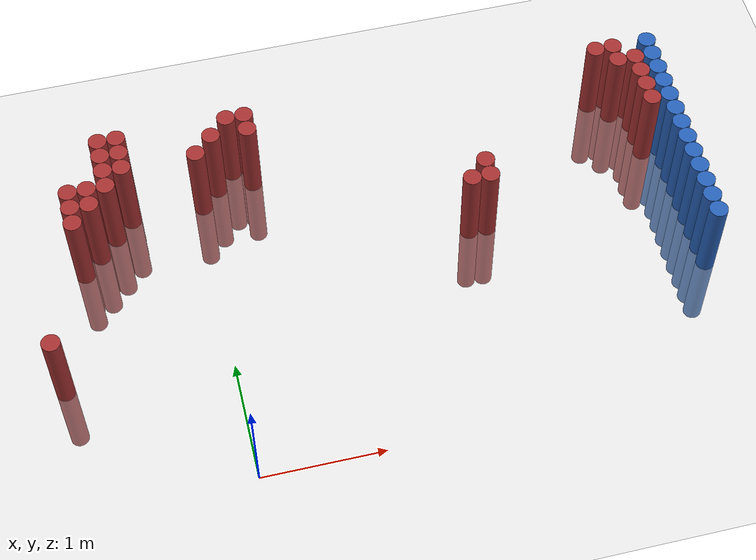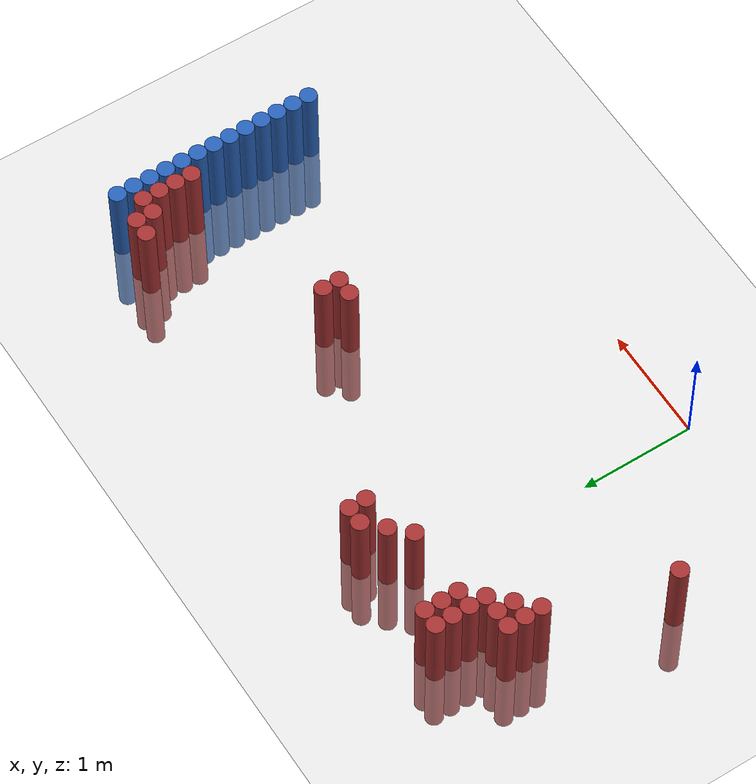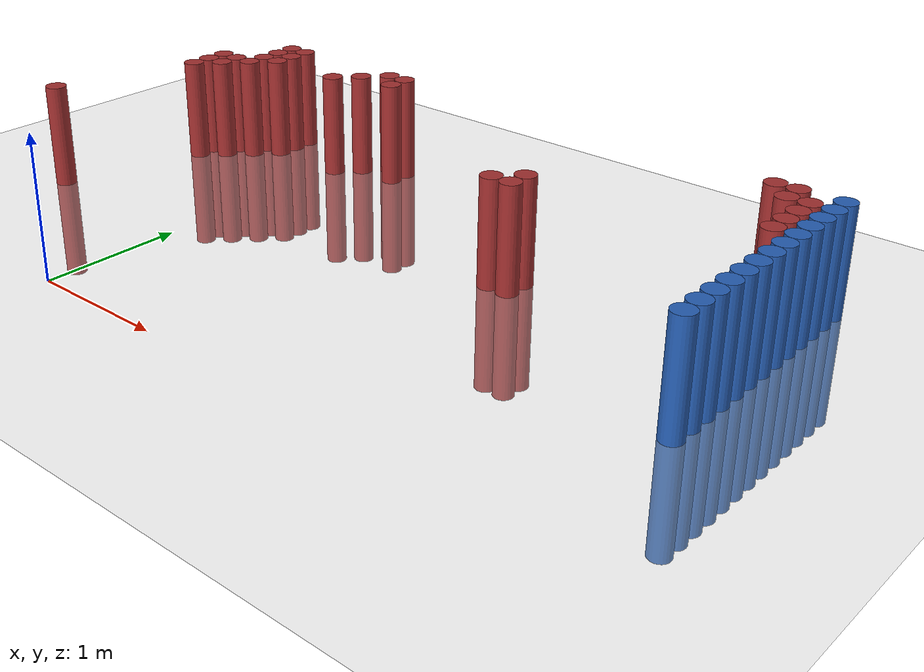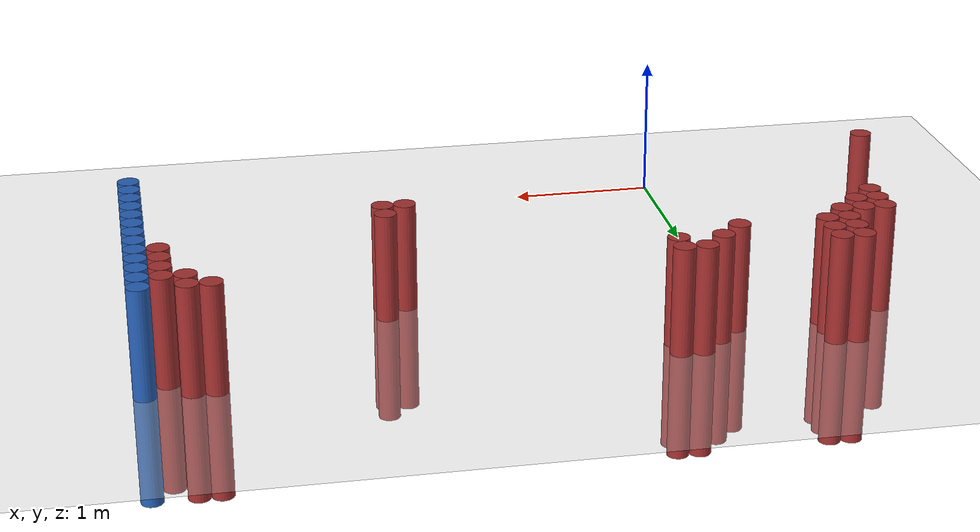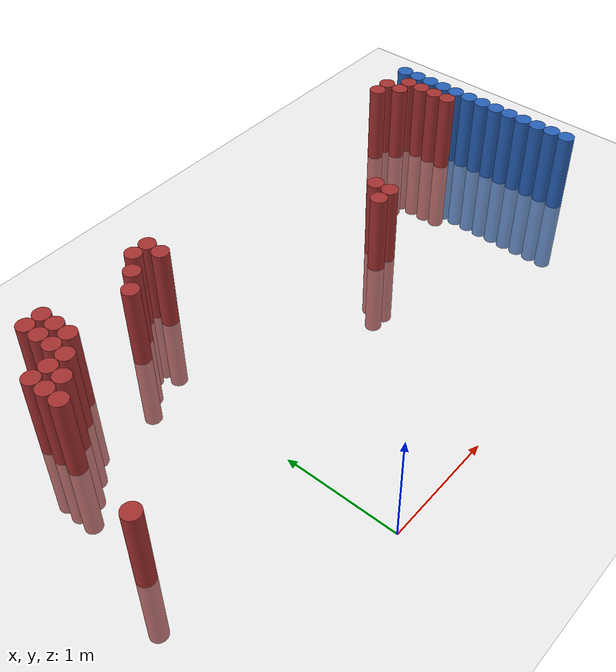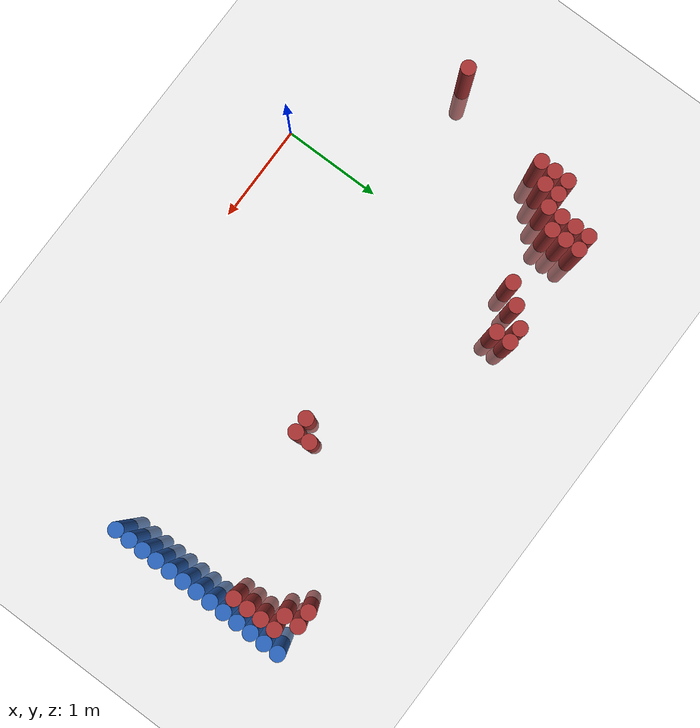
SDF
<sdf version="1.6">
 <world name="default">
  <model name="ground_plane">
   <static>1</static>
   <link name="link">
    <collision name="collision">
     <geometry><plane><normal>0 0 1</normal><size>100 100</size></plane></geometry>
     <surface><friction><ode><mu>100</mu><mu2>50</mu2></ode></friction></surface>
    </collision>
    <visual name="visual">
     <cast_shadows>0</cast_shadows>
     <geometry><plane><normal>0 0 1</normal><size>100 100</size></plane></geometry>
     <material>
      <script><uri>file://media/materials/scripts/gazebo.material</uri><name>Gazebo/Grey</name></script>
     </material>
    </visual>
   </link>
  </model>
  <model name="unit_cylinder_130">
   <static>1</static>
   <pose>3.925000 1.225000 0.000000 0.000000 0.000000 0.000000</pose>
   <link name="link">
    <inertial>
     <mass>1</mass>
     <inertia><ixx>0.145833</ixx><ixy>0</ixy><ixz>0</ixz><iyy>0.145833</iyy><iyz>0</iyz><izz>0.125</izz></inertia>
    </inertial>
    <collision name="collision">
     <geometry><cylinder><radius>0.075000</radius><length>1.5</length></cylinder></geometry>
    </collision>
    <visual name="visual">
     <geometry><cylinder><radius>0.075000</radius><length>1.5</length></cylinder></geometry>
     <material>
      <ambient>0.152000 0.379000 0.720000 1</ambient>
      <diffuse>0.152000 0.379000 0.720000 1</diffuse>
     </material>
     <material>
      <script><name>Gazebo/Grey</name><uri>file://media/materials/scripts/gazebo.material</uri></script>
     </material>
    </visual>
   </link>
  </model>
  <model name="unit_cylinder_132">
   <static>1</static>
   <pose>3.925000 1.375000 0.000000 0.000000 0.000000 0.000000</pose>
   <link name="link">
    <inertial>
     <mass>1</mass>
     <inertia><ixx>0.145833</ixx><ixy>0</ixy><ixz>0</ixz><iyy>0.145833</iyy><iyz>0</iyz><izz>0.125</izz></inertia>
    </inertial>
    <collision name="collision">
     <geometry><cylinder><radius>0.075000</radius><length>1.5</length></cylinder></geometry>
    </collision>
    <visual name="visual">
     <geometry><cylinder><radius>0.075000</radius><length>1.5</length></cylinder></geometry>
     <material>
      <ambient>0.152000 0.379000 0.720000 1</ambient>
      <diffuse>0.152000 0.379000 0.720000 1</diffuse>
     </material>
     <material>
      <script><name>Gazebo/Grey</name><uri>file://media/materials/scripts/gazebo.material</uri></script>
     </material>
    </visual>
   </link>
  </model>
  <model name="unit_cylinder_134">
   <static>1</static>
   <pose>3.925000 1.525000 0.000000 0.000000 0.000000 0.000000</pose>
   <link name="link">
    <inertial>
     <mass>1</mass>
     <inertia><ixx>0.145833</ixx><ixy>0</ixy><ixz>0</ixz><iyy>0.145833</iyy><iyz>0</iyz><izz>0.125</izz></inertia>
    </inertial>
    <collision name="collision">
     <geometry><cylinder><radius>0.075000</radius><length>1.5</length></cylinder></geometry>
    </collision>
    <visual name="visual">
     <geometry><cylinder><radius>0.075000</radius><length>1.5</length></cylinder></geometry>
     <material>
      <ambient>0.152000 0.379000 0.720000 1</ambient>
      <diffuse>0.152000 0.379000 0.720000 1</diffuse>
     </material>
     <material>
      <script><name>Gazebo/Grey</name><uri>file://media/materials/scripts/gazebo.material</uri></script>
     </material>
    </visual>
   </link>
  </model>
  <model name="unit_cylinder_136">
   <static>1</static>
   <pose>3.925000 1.675000 0.000000 0.000000 0.000000 0.000000</pose>
   <link name="link">
    <inertial>
     <mass>1</mass>
     <inertia><ixx>0.145833</ixx><ixy>0</ixy><ixz>0</ixz><iyy>0.145833</iyy><iyz>0</iyz><izz>0.125</izz></inertia>
    </inertial>
    <collision name="collision">
     <geometry><cylinder><radius>0.075000</radius><length>1.5</length></cylinder></geometry>
    </collision>
    <visual name="visual">
     <geometry><cylinder><radius>0.075000</radius><length>1.5</length></cylinder></geometry>
     <material>
      <ambient>0.152000 0.379000 0.720000 1</ambient>
      <diffuse>0.152000 0.379000 0.720000 1</diffuse>
     </material>
     <material>
      <script><name>Gazebo/Grey</name><uri>file://media/materials/scripts/gazebo.material</uri></script>
     </material>
    </visual>
   </link>
  </model>
  <model name="unit_cylinder_138">
   <static>1</static>
   <pose>3.925000 1.825000 0.000000 0.000000 0.000000 0.000000</pose>
   <link name="link">
    <inertial>
     <mass>1</mass>
     <inertia><ixx>0.145833</ixx><ixy>0</ixy><ixz>0</ixz><iyy>0.145833</iyy><iyz>0</iyz><izz>0.125</izz></inertia>
    </inertial>
    <collision name="collision">
     <geometry><cylinder><radius>0.075000</radius><length>1.5</length></cylinder></geometry>
    </collision>
    <visual name="visual">
     <geometry><cylinder><radius>0.075000</radius><length>1.5</length></cylinder></geometry>
     <material>
      <ambient>0.152000 0.379000 0.720000 1</ambient>
      <diffuse>0.152000 0.379000 0.720000 1</diffuse>
     </material>
     <material>
      <script><name>Gazebo/Grey</name><uri>file://media/materials/scripts/gazebo.material</uri></script>
     </material>
    </visual>
   </link>
  </model>
  <model name="unit_cylinder_140">
   <static>1</static>
   <pose>3.925000 1.975000 0.000000 0.000000 0.000000 0.000000</pose>
   <link name="link">
    <inertial>
     <mass>1</mass>
     <inertia><ixx>0.145833</ixx><ixy>0</ixy><ixz>0</ixz><iyy>0.145833</iyy><iyz>0</iyz><izz>0.125</izz></inertia>
    </inertial>
    <collision name="collision">
     <geometry><cylinder><radius>0.075000</radius><length>1.5</length></cylinder></geometry>
    </collision>
    <visual name="visual">
     <geometry><cylinder><radius>0.075000</radius><length>1.5</length></cylinder></geometry>
     <material>
      <ambient>0.152000 0.379000 0.720000 1</ambient>
      <diffuse>0.152000 0.379000 0.720000 1</diffuse>
     </material>
     <material>
      <script><name>Gazebo/Grey</name><uri>file://media/materials/scripts/gazebo.material</uri></script>
     </material>
    </visual>
   </link>
  </model>
  <model name="unit_cylinder_142">
   <static>1</static>
   <pose>3.925000 2.125000 0.000000 0.000000 0.000000 0.000000</pose>
   <link name="link">
    <inertial>
     <mass>1</mass>
     <inertia><ixx>0.145833</ixx><ixy>0</ixy><ixz>0</ixz><iyy>0.145833</iyy><iyz>0</iyz><izz>0.125</izz></inertia>
    </inertial>
    <collision name="collision">
     <geometry><cylinder><radius>0.075000</radius><length>1.5</length></cylinder></geometry>
    </collision>
    <visual name="visual">
     <geometry><cylinder><radius>0.075000</radius><length>1.5</length></cylinder></geometry>
     <material>
      <ambient>0.152000 0.379000 0.720000 1</ambient>
      <diffuse>0.152000 0.379000 0.720000 1</diffuse>
     </material>
     <material>
      <script><name>Gazebo/Grey</name><uri>file://media/materials/scripts/gazebo.material</uri></script>
     </material>
    </visual>
   </link>
  </model>
  <model name="unit_cylinder_144">
   <static>1</static>
   <pose>3.925000 2.275000 0.000000 0.000000 0.000000 0.000000</pose>
   <link name="link">
    <inertial>
     <mass>1</mass>
     <inertia><ixx>0.145833</ixx><ixy>0</ixy><ixz>0</ixz><iyy>0.145833</iyy><iyz>0</iyz><izz>0.125</izz></inertia>
    </inertial>
    <collision name="collision">
     <geometry><cylinder><radius>0.075000</radius><length>1.5</length></cylinder></geometry>
    </collision>
    <visual name="visual">
     <geometry><cylinder><radius>0.075000</radius><length>1.5</length></cylinder></geometry>
     <material>
      <ambient>0.152000 0.379000 0.720000 1</ambient>
      <diffuse>0.152000 0.379000 0.720000 1</diffuse>
     </material>
     <material>
      <script><name>Gazebo/Grey</name><uri>file://media/materials/scripts/gazebo.material</uri></script>
     </material>
    </visual>
   </link>
  </model>
  <model name="unit_cylinder_146">
   <static>1</static>
   <pose>3.925000 2.425000 0.000000 0.000000 0.000000 0.000000</pose>
   <link name="link">
    <inertial>
     <mass>1</mass>
     <inertia><ixx>0.145833</ixx><ixy>0</ixy><ixz>0</ixz><iyy>0.145833</iyy><iyz>0</iyz><izz>0.125</izz></inertia>
    </inertial>
    <collision name="collision">
     <geometry><cylinder><radius>0.075000</radius><length>1.5</length></cylinder></geometry>
    </collision>
    <visual name="visual">
     <geometry><cylinder><radius>0.075000</radius><length>1.5</length></cylinder></geometry>
     <material>
      <ambient>0.152000 0.379000 0.720000 1</ambient>
      <diffuse>0.152000 0.379000 0.720000 1</diffuse>
     </material>
     <material>
      <script><name>Gazebo/Grey</name><uri>file://media/materials/scripts/gazebo.material</uri></script>
     </material>
    </visual>
   </link>
  </model>
  <model name="unit_cylinder_148">
   <static>1</static>
   <pose>3.925000 2.575000 0.000000 0.000000 0.000000 0.000000</pose>
   <link name="link">
    <inertial>
     <mass>1</mass>
     <inertia><ixx>0.145833</ixx><ixy>0</ixy><ixz>0</ixz><iyy>0.145833</iyy><iyz>0</iyz><izz>0.125</izz></inertia>
    </inertial>
    <collision name="collision">
     <geometry><cylinder><radius>0.075000</radius><length>1.5</length></cylinder></geometry>
    </collision>
    <visual name="visual">
     <geometry><cylinder><radius>0.075000</radius><length>1.5</length></cylinder></geometry>
     <material>
      <ambient>0.152000 0.379000 0.720000 1</ambient>
      <diffuse>0.152000 0.379000 0.720000 1</diffuse>
     </material>
     <material>
      <script><name>Gazebo/Grey</name><uri>file://media/materials/scripts/gazebo.material</uri></script>
     </material>
    </visual>
   </link>
  </model>
  <model name="unit_cylinder_150">
   <static>1</static>
   <pose>3.925000 2.725000 0.000000 0.000000 0.000000 0.000000</pose>
   <link name="link">
    <inertial>
     <mass>1</mass>
     <inertia><ixx>0.145833</ixx><ixy>0</ixy><ixz>0</ixz><iyy>0.145833</iyy><iyz>0</iyz><izz>0.125</izz></inertia>
    </inertial>
    <collision name="collision">
     <geometry><cylinder><radius>0.075000</radius><length>1.5</length></cylinder></geometry>
    </collision>
    <visual name="visual">
     <geometry><cylinder><radius>0.075000</radius><length>1.5</length></cylinder></geometry>
     <material>
      <ambient>0.152000 0.379000 0.720000 1</ambient>
      <diffuse>0.152000 0.379000 0.720000 1</diffuse>
     </material>
     <material>
      <script><name>Gazebo/Grey</name><uri>file://media/materials/scripts/gazebo.material</uri></script>
     </material>
    </visual>
   </link>
  </model>
  <model name="unit_cylinder_152">
   <static>1</static>
   <pose>3.925000 2.875000 0.000000 0.000000 0.000000 0.000000</pose>
   <link name="link">
    <inertial>
     <mass>1</mass>
     <inertia><ixx>0.145833</ixx><ixy>0</ixy><ixz>0</ixz><iyy>0.145833</iyy><iyz>0</iyz><izz>0.125</izz></inertia>
    </inertial>
    <collision name="collision">
     <geometry><cylinder><radius>0.075000</radius><length>1.5</length></cylinder></geometry>
    </collision>
    <visual name="visual">
     <geometry><cylinder><radius>0.075000</radius><length>1.5</length></cylinder></geometry>
     <material>
      <ambient>0.152000 0.379000 0.720000 1</ambient>
      <diffuse>0.152000 0.379000 0.720000 1</diffuse>
     </material>
     <material>
      <script><name>Gazebo/Grey</name><uri>file://media/materials/scripts/gazebo.material</uri></script>
     </material>
    </visual>
   </link>
  </model>
  <model name="unit_cylinder_340">
   <static>1</static>
   <pose>-1.325000 1.075000 0.000000 0.000000 0.000000 0.000000</pose>
   <link name="link">
    <inertial>
     <mass>1</mass>
     <inertia><ixx>0.145833</ixx><ixy>0</ixy><ixz>0</ixz><iyy>0.145833</iyy><iyz>0</iyz><izz>0.125</izz></inertia>
    </inertial>
    <collision name="collision">
     <geometry><cylinder><radius>0.075000</radius><length>1.5</length></cylinder></geometry>
    </collision>
    <visual name="visual">
     <geometry><cylinder><radius>0.075000</radius><length>1.5</length></cylinder></geometry>
     <material>
      <ambient>0.648000 0.192000 0.192000 1</ambient>
      <diffuse>0.648000 0.192000 0.192000 1</diffuse>
     </material>
     <material>
      <script><name>Gazebo/Grey</name><uri>file://media/materials/scripts/gazebo.material</uri></script>
     </material>
    </visual>
   </link>
  </model>
  <model name="unit_cylinder_345">
   <static>1</static>
   <pose>-1.025000 2.125000 0.000000 0.000000 0.000000 0.000000</pose>
   <link name="link">
    <inertial>
     <mass>1</mass>
     <inertia><ixx>0.145833</ixx><ixy>0</ixy><ixz>0</ixz><iyy>0.145833</iyy><iyz>0</iyz><izz>0.125</izz></inertia>
    </inertial>
    <collision name="collision">
     <geometry><cylinder><radius>0.075000</radius><length>1.5</length></cylinder></geometry>
    </collision>
    <visual name="visual">
     <geometry><cylinder><radius>0.075000</radius><length>1.5</length></cylinder></geometry>
     <material>
      <ambient>0.648000 0.192000 0.192000 1</ambient>
      <diffuse>0.648000 0.192000 0.192000 1</diffuse>
     </material>
     <material>
      <script><name>Gazebo/Grey</name><uri>file://media/materials/scripts/gazebo.material</uri></script>
     </material>
    </visual>
   </link>
  </model>
  <model name="unit_cylinder_346">
   <static>1</static>
   <pose>-1.025000 2.275000 0.000000 0.000000 0.000000 0.000000</pose>
   <link name="link">
    <inertial>
     <mass>1</mass>
     <inertia><ixx>0.145833</ixx><ixy>0</ixy><ixz>0</ixz><iyy>0.145833</iyy><iyz>0</iyz><izz>0.125</izz></inertia>
    </inertial>
    <collision name="collision">
     <geometry><cylinder><radius>0.075000</radius><length>1.5</length></cylinder></geometry>
    </collision>
    <visual name="visual">
     <geometry><cylinder><radius>0.075000</radius><length>1.5</length></cylinder></geometry>
     <material>
      <ambient>0.648000 0.192000 0.192000 1</ambient>
      <diffuse>0.648000 0.192000 0.192000 1</diffuse>
     </material>
     <material>
      <script><name>Gazebo/Grey</name><uri>file://media/materials/scripts/gazebo.material</uri></script>
     </material>
    </visual>
   </link>
  </model>
  <model name="unit_cylinder_347">
   <static>1</static>
   <pose>-1.025000 2.425000 0.000000 0.000000 0.000000 0.000000</pose>
   <link name="link">
    <inertial>
     <mass>1</mass>
     <inertia><ixx>0.145833</ixx><ixy>0</ixy><ixz>0</ixz><iyy>0.145833</iyy><iyz>0</iyz><izz>0.125</izz></inertia>
    </inertial>
    <collision name="collision">
     <geometry><cylinder><radius>0.075000</radius><length>1.5</length></cylinder></geometry>
    </collision>
    <visual name="visual">
     <geometry><cylinder><radius>0.075000</radius><length>1.5</length></cylinder></geometry>
     <material>
      <ambient>0.648000 0.192000 0.192000 1</ambient>
      <diffuse>0.648000 0.192000 0.192000 1</diffuse>
     </material>
     <material>
      <script><name>Gazebo/Grey</name><uri>file://media/materials/scripts/gazebo.material</uri></script>
     </material>
    </visual>
   </link>
  </model>
  <model name="unit_cylinder_352">
   <static>1</static>
   <pose>-0.875000 2.275000 0.000000 0.000000 0.000000 0.000000</pose>
   <link name="link">
    <inertial>
     <mass>1</mass>
     <inertia><ixx>0.145833</ixx><ixy>0</ixy><ixz>0</ixz><iyy>0.145833</iyy><iyz>0</iyz><izz>0.125</izz></inertia>
    </inertial>
    <collision name="collision">
     <geometry><cylinder><radius>0.075000</radius><length>1.5</length></cylinder></geometry>
    </collision>
    <visual name="visual">
     <geometry><cylinder><radius>0.075000</radius><length>1.5</length></cylinder></geometry>
     <material>
      <ambient>0.648000 0.192000 0.192000 1</ambient>
      <diffuse>0.648000 0.192000 0.192000 1</diffuse>
     </material>
     <material>
      <script><name>Gazebo/Grey</name><uri>file://media/materials/scripts/gazebo.material</uri></script>
     </material>
    </visual>
   </link>
  </model>
  <model name="unit_cylinder_353">
   <static>1</static>
   <pose>-0.875000 2.425000 0.000000 0.000000 0.000000 0.000000</pose>
   <link name="link">
    <inertial>
     <mass>1</mass>
     <inertia><ixx>0.145833</ixx><ixy>0</ixy><ixz>0</ixz><iyy>0.145833</iyy><iyz>0</iyz><izz>0.125</izz></inertia>
    </inertial>
    <collision name="collision">
     <geometry><cylinder><radius>0.075000</radius><length>1.5</length></cylinder></geometry>
    </collision>
    <visual name="visual">
     <geometry><cylinder><radius>0.075000</radius><length>1.5</length></cylinder></geometry>
     <material>
      <ambient>0.648000 0.192000 0.192000 1</ambient>
      <diffuse>0.648000 0.192000 0.192000 1</diffuse>
     </material>
     <material>
      <script><name>Gazebo/Grey</name><uri>file://media/materials/scripts/gazebo.material</uri></script>
     </material>
    </visual>
   </link>
  </model>
  <model name="unit_cylinder_357">
   <static>1</static>
   <pose>-0.725000 2.425000 0.000000 0.000000 0.000000 0.000000</pose>
   <link name="link">
    <inertial>
     <mass>1</mass>
     <inertia><ixx>0.145833</ixx><ixy>0</ixy><ixz>0</ixz><iyy>0.145833</iyy><iyz>0</iyz><izz>0.125</izz></inertia>
    </inertial>
    <collision name="collision">
     <geometry><cylinder><radius>0.075000</radius><length>1.5</length></cylinder></geometry>
    </collision>
    <visual name="visual">
     <geometry><cylinder><radius>0.075000</radius><length>1.5</length></cylinder></geometry>
     <material>
      <ambient>0.648000 0.192000 0.192000 1</ambient>
      <diffuse>0.648000 0.192000 0.192000 1</diffuse>
     </material>
     <material>
      <script><name>Gazebo/Grey</name><uri>file://media/materials/scripts/gazebo.material</uri></script>
     </material>
    </visual>
   </link>
  </model>
  <model name="unit_cylinder_358">
   <static>1</static>
   <pose>-0.725000 2.575000 0.000000 0.000000 0.000000 0.000000</pose>
   <link name="link">
    <inertial>
     <mass>1</mass>
     <inertia><ixx>0.145833</ixx><ixy>0</ixy><ixz>0</ixz><iyy>0.145833</iyy><iyz>0</iyz><izz>0.125</izz></inertia>
    </inertial>
    <collision name="collision">
     <geometry><cylinder><radius>0.075000</radius><length>1.5</length></cylinder></geometry>
    </collision>
    <visual name="visual">
     <geometry><cylinder><radius>0.075000</radius><length>1.5</length></cylinder></geometry>
     <material>
      <ambient>0.648000 0.192000 0.192000 1</ambient>
      <diffuse>0.648000 0.192000 0.192000 1</diffuse>
     </material>
     <material>
      <script><name>Gazebo/Grey</name><uri>file://media/materials/scripts/gazebo.material</uri></script>
     </material>
    </visual>
   </link>
  </model>
  <model name="unit_cylinder_359">
   <static>1</static>
   <pose>-0.725000 2.725000 0.000000 0.000000 0.000000 0.000000</pose>
   <link name="link">
    <inertial>
     <mass>1</mass>
     <inertia><ixx>0.145833</ixx><ixy>0</ixy><ixz>0</ixz><iyy>0.145833</iyy><iyz>0</iyz><izz>0.125</izz></inertia>
    </inertial>
    <collision name="collision">
     <geometry><cylinder><radius>0.075000</radius><length>1.5</length></cylinder></geometry>
    </collision>
    <visual name="visual">
     <geometry><cylinder><radius>0.075000</radius><length>1.5</length></cylinder></geometry>
     <material>
      <ambient>0.648000 0.192000 0.192000 1</ambient>
      <diffuse>0.648000 0.192000 0.192000 1</diffuse>
     </material>
     <material>
      <script><name>Gazebo/Grey</name><uri>file://media/materials/scripts/gazebo.material</uri></script>
     </material>
    </visual>
   </link>
  </model>
  <model name="unit_cylinder_360">
   <static>1</static>
   <pose>-0.725000 2.875000 0.000000 0.000000 0.000000 0.000000</pose>
   <link name="link">
    <inertial>
     <mass>1</mass>
     <inertia><ixx>0.145833</ixx><ixy>0</ixy><ixz>0</ixz><iyy>0.145833</iyy><iyz>0</iyz><izz>0.125</izz></inertia>
    </inertial>
    <collision name="collision">
     <geometry><cylinder><radius>0.075000</radius><length>1.5</length></cylinder></geometry>
    </collision>
    <visual name="visual">
     <geometry><cylinder><radius>0.075000</radius><length>1.5</length></cylinder></geometry>
     <material>
      <ambient>0.648000 0.192000 0.192000 1</ambient>
      <diffuse>0.648000 0.192000 0.192000 1</diffuse>
     </material>
     <material>
      <script><name>Gazebo/Grey</name><uri>file://media/materials/scripts/gazebo.material</uri></script>
     </material>
    </visual>
   </link>
  </model>
  <model name="unit_cylinder_367">
   <static>1</static>
   <pose>-0.575000 2.575000 0.000000 0.000000 0.000000 0.000000</pose>
   <link name="link">
    <inertial>
     <mass>1</mass>
     <inertia><ixx>0.145833</ixx><ixy>0</ixy><ixz>0</ixz><iyy>0.145833</iyy><iyz>0</iyz><izz>0.125</izz></inertia>
    </inertial>
    <collision name="collision">
     <geometry><cylinder><radius>0.075000</radius><length>1.5</length></cylinder></geometry>
    </collision>
    <visual name="visual">
     <geometry><cylinder><radius>0.075000</radius><length>1.5</length></cylinder></geometry>
     <material>
      <ambient>0.648000 0.192000 0.192000 1</ambient>
      <diffuse>0.648000 0.192000 0.192000 1</diffuse>
     </material>
     <material>
      <script><name>Gazebo/Grey</name><uri>file://media/materials/scripts/gazebo.material</uri></script>
     </material>
    </visual>
   </link>
  </model>
  <model name="unit_cylinder_368">
   <static>1</static>
   <pose>-0.575000 2.725000 0.000000 0.000000 0.000000 0.000000</pose>
   <link name="link">
    <inertial>
     <mass>1</mass>
     <inertia><ixx>0.145833</ixx><ixy>0</ixy><ixz>0</ixz><iyy>0.145833</iyy><iyz>0</iyz><izz>0.125</izz></inertia>
    </inertial>
    <collision name="collision">
     <geometry><cylinder><radius>0.075000</radius><length>1.5</length></cylinder></geometry>
    </collision>
    <visual name="visual">
     <geometry><cylinder><radius>0.075000</radius><length>1.5</length></cylinder></geometry>
     <material>
      <ambient>0.648000 0.192000 0.192000 1</ambient>
      <diffuse>0.648000 0.192000 0.192000 1</diffuse>
     </material>
     <material>
      <script><name>Gazebo/Grey</name><uri>file://media/materials/scripts/gazebo.material</uri></script>
     </material>
    </visual>
   </link>
  </model>
  <model name="unit_cylinder_369">
   <static>1</static>
   <pose>-0.575000 2.875000 0.000000 0.000000 0.000000 0.000000</pose>
   <link name="link">
    <inertial>
     <mass>1</mass>
     <inertia><ixx>0.145833</ixx><ixy>0</ixy><ixz>0</ixz><iyy>0.145833</iyy><iyz>0</iyz><izz>0.125</izz></inertia>
    </inertial>
    <collision name="collision">
     <geometry><cylinder><radius>0.075000</radius><length>1.5</length></cylinder></geometry>
    </collision>
    <visual name="visual">
     <geometry><cylinder><radius>0.075000</radius><length>1.5</length></cylinder></geometry>
     <material>
      <ambient>0.648000 0.192000 0.192000 1</ambient>
      <diffuse>0.648000 0.192000 0.192000 1</diffuse>
     </material>
     <material>
      <script><name>Gazebo/Grey</name><uri>file://media/materials/scripts/gazebo.material</uri></script>
     </material>
    </visual>
   </link>
  </model>
  <model name="unit_cylinder_376">
   <static>1</static>
   <pose>0.025000 2.575000 0.000000 0.000000 0.000000 0.000000</pose>
   <link name="link">
    <inertial>
     <mass>1</mass>
     <inertia><ixx>0.145833</ixx><ixy>0</ixy><ixz>0</ixz><iyy>0.145833</iyy><iyz>0</iyz><izz>0.125</izz></inertia>
    </inertial>
    <collision name="collision">
     <geometry><cylinder><radius>0.075000</radius><length>1.5</length></cylinder></geometry>
    </collision>
    <visual name="visual">
     <geometry><cylinder><radius>0.075000</radius><length>1.5</length></cylinder></geometry>
     <material>
      <ambient>0.648000 0.192000 0.192000 1</ambient>
      <diffuse>0.648000 0.192000 0.192000 1</diffuse>
     </material>
     <material>
      <script><name>Gazebo/Grey</name><uri>file://media/materials/scripts/gazebo.material</uri></script>
     </material>
    </visual>
   </link>
  </model>
  <model name="unit_cylinder_379">
   <static>1</static>
   <pose>0.175000 2.725000 0.000000 0.000000 0.000000 0.000000</pose>
   <link name="link">
    <inertial>
     <mass>1</mass>
     <inertia><ixx>0.145833</ixx><ixy>0</ixy><ixz>0</ixz><iyy>0.145833</iyy><iyz>0</iyz><izz>0.125</izz></inertia>
    </inertial>
    <collision name="collision">
     <geometry><cylinder><radius>0.075000</radius><length>1.5</length></cylinder></geometry>
    </collision>
    <visual name="visual">
     <geometry><cylinder><radius>0.075000</radius><length>1.5</length></cylinder></geometry>
     <material>
      <ambient>0.648000 0.192000 0.192000 1</ambient>
      <diffuse>0.648000 0.192000 0.192000 1</diffuse>
     </material>
     <material>
      <script><name>Gazebo/Grey</name><uri>file://media/materials/scripts/gazebo.material</uri></script>
     </material>
    </visual>
   </link>
  </model>
  <model name="unit_cylinder_381">
   <static>1</static>
   <pose>0.325000 2.875000 0.000000 0.000000 0.000000 0.000000</pose>
   <link name="link">
    <inertial>
     <mass>1</mass>
     <inertia><ixx>0.145833</ixx><ixy>0</ixy><ixz>0</ixz><iyy>0.145833</iyy><iyz>0</iyz><izz>0.125</izz></inertia>
    </inertial>
    <collision name="collision">
     <geometry><cylinder><radius>0.075000</radius><length>1.5</length></cylinder></geometry>
    </collision>
    <visual name="visual">
     <geometry><cylinder><radius>0.075000</radius><length>1.5</length></cylinder></geometry>
     <material>
      <ambient>0.648000 0.192000 0.192000 1</ambient>
      <diffuse>0.648000 0.192000 0.192000 1</diffuse>
     </material>
     <material>
      <script><name>Gazebo/Grey</name><uri>file://media/materials/scripts/gazebo.material</uri></script>
     </material>
    </visual>
   </link>
  </model>
  <model name="unit_cylinder_383">
   <static>1</static>
   <pose>0.475000 2.725000 0.000000 0.000000 0.000000 0.000000</pose>
   <link name="link">
    <inertial>
     <mass>1</mass>
     <inertia><ixx>0.145833</ixx><ixy>0</ixy><ixz>0</ixz><iyy>0.145833</iyy><iyz>0</iyz><izz>0.125</izz></inertia>
    </inertial>
    <collision name="collision">
     <geometry><cylinder><radius>0.075000</radius><length>1.5</length></cylinder></geometry>
    </collision>
    <visual name="visual">
     <geometry><cylinder><radius>0.075000</radius><length>1.5</length></cylinder></geometry>
     <material>
      <ambient>0.648000 0.192000 0.192000 1</ambient>
      <diffuse>0.648000 0.192000 0.192000 1</diffuse>
     </material>
     <material>
      <script><name>Gazebo/Grey</name><uri>file://media/materials/scripts/gazebo.material</uri></script>
     </material>
    </visual>
   </link>
  </model>
  <model name="unit_cylinder_384">
   <static>1</static>
   <pose>0.475000 2.875000 0.000000 0.000000 0.000000 0.000000</pose>
   <link name="link">
    <inertial>
     <mass>1</mass>
     <inertia><ixx>0.145833</ixx><ixy>0</ixy><ixz>0</ixz><iyy>0.145833</iyy><iyz>0</iyz><izz>0.125</izz></inertia>
    </inertial>
    <collision name="collision">
     <geometry><cylinder><radius>0.075000</radius><length>1.5</length></cylinder></geometry>
    </collision>
    <visual name="visual">
     <geometry><cylinder><radius>0.075000</radius><length>1.5</length></cylinder></geometry>
     <material>
      <ambient>0.648000 0.192000 0.192000 1</ambient>
      <diffuse>0.648000 0.192000 0.192000 1</diffuse>
     </material>
     <material>
      <script><name>Gazebo/Grey</name><uri>file://media/materials/scripts/gazebo.material</uri></script>
     </material>
    </visual>
   </link>
  </model>
  <model name="unit_cylinder_415">
   <static>1</static>
   <pose>2.125000 1.825000 0.000000 0.000000 0.000000 0.000000</pose>
   <link name="link">
    <inertial>
     <mass>1</mass>
     <inertia><ixx>0.145833</ixx><ixy>0</ixy><ixz>0</ixz><iyy>0.145833</iyy><iyz>0</iyz><izz>0.125</izz></inertia>
    </inertial>
    <collision name="collision">
     <geometry><cylinder><radius>0.075000</radius><length>1.5</length></cylinder></geometry>
    </collision>
    <visual name="visual">
     <geometry><cylinder><radius>0.075000</radius><length>1.5</length></cylinder></geometry>
     <material>
      <ambient>0.648000 0.192000 0.192000 1</ambient>
      <diffuse>0.648000 0.192000 0.192000 1</diffuse>
     </material>
     <material>
      <script><name>Gazebo/Grey</name><uri>file://media/materials/scripts/gazebo.material</uri></script>
     </material>
    </visual>
   </link>
  </model>
  <model name="unit_cylinder_418">
   <static>1</static>
   <pose>2.275000 1.825000 0.000000 0.000000 0.000000 0.000000</pose>
   <link name="link">
    <inertial>
     <mass>1</mass>
     <inertia><ixx>0.145833</ixx><ixy>0</ixy><ixz>0</ixz><iyy>0.145833</iyy><iyz>0</iyz><izz>0.125</izz></inertia>
    </inertial>
    <collision name="collision">
     <geometry><cylinder><radius>0.075000</radius><length>1.5</length></cylinder></geometry>
    </collision>
    <visual name="visual">
     <geometry><cylinder><radius>0.075000</radius><length>1.5</length></cylinder></geometry>
     <material>
      <ambient>0.648000 0.192000 0.192000 1</ambient>
      <diffuse>0.648000 0.192000 0.192000 1</diffuse>
     </material>
     <material>
      <script><name>Gazebo/Grey</name><uri>file://media/materials/scripts/gazebo.material</uri></script>
     </material>
    </visual>
   </link>
  </model>
  <model name="unit_cylinder_419">
   <static>1</static>
   <pose>2.275000 1.975000 0.000000 0.000000 0.000000 0.000000</pose>
   <link name="link">
    <inertial>
     <mass>1</mass>
     <inertia><ixx>0.145833</ixx><ixy>0</ixy><ixz>0</ixz><iyy>0.145833</iyy><iyz>0</iyz><izz>0.125</izz></inertia>
    </inertial>
    <collision name="collision">
     <geometry><cylinder><radius>0.075000</radius><length>1.5</length></cylinder></geometry>
    </collision>
    <visual name="visual">
     <geometry><cylinder><radius>0.075000</radius><length>1.5</length></cylinder></geometry>
     <material>
      <ambient>0.648000 0.192000 0.192000 1</ambient>
      <diffuse>0.648000 0.192000 0.192000 1</diffuse>
     </material>
     <material>
      <script><name>Gazebo/Grey</name><uri>file://media/materials/scripts/gazebo.material</uri></script>
     </material>
    </visual>
   </link>
  </model>
  <model name="unit_cylinder_439">
   <static>1</static>
   <pose>3.475000 2.875000 0.000000 0.000000 0.000000 0.000000</pose>
   <link name="link">
    <inertial>
     <mass>1</mass>
     <inertia><ixx>0.145833</ixx><ixy>0</ixy><ixz>0</ixz><iyy>0.145833</iyy><iyz>0</iyz><izz>0.125</izz></inertia>
    </inertial>
    <collision name="collision">
     <geometry><cylinder><radius>0.075000</radius><length>1.5</length></cylinder></geometry>
    </collision>
    <visual name="visual">
     <geometry><cylinder><radius>0.075000</radius><length>1.5</length></cylinder></geometry>
     <material>
      <ambient>0.648000 0.192000 0.192000 1</ambient>
      <diffuse>0.648000 0.192000 0.192000 1</diffuse>
     </material>
     <material>
      <script><name>Gazebo/Grey</name><uri>file://media/materials/scripts/gazebo.material</uri></script>
     </material>
    </visual>
   </link>
  </model>
  <model name="unit_cylinder_448">
   <static>1</static>
   <pose>3.625000 2.725000 0.000000 0.000000 0.000000 0.000000</pose>
   <link name="link">
    <inertial>
     <mass>1</mass>
     <inertia><ixx>0.145833</ixx><ixy>0</ixy><ixz>0</ixz><iyy>0.145833</iyy><iyz>0</iyz><izz>0.125</izz></inertia>
    </inertial>
    <collision name="collision">
     <geometry><cylinder><radius>0.075000</radius><length>1.5</length></cylinder></geometry>
    </collision>
    <visual name="visual">
     <geometry><cylinder><radius>0.075000</radius><length>1.5</length></cylinder></geometry>
     <material>
      <ambient>0.648000 0.192000 0.192000 1</ambient>
      <diffuse>0.648000 0.192000 0.192000 1</diffuse>
     </material>
     <material>
      <script><name>Gazebo/Grey</name><uri>file://media/materials/scripts/gazebo.material</uri></script>
     </material>
    </visual>
   </link>
  </model>
  <model name="unit_cylinder_449">
   <static>1</static>
   <pose>3.625000 2.875000 0.000000 0.000000 0.000000 0.000000</pose>
   <link name="link">
    <inertial>
     <mass>1</mass>
     <inertia><ixx>0.145833</ixx><ixy>0</ixy><ixz>0</ixz><iyy>0.145833</iyy><iyz>0</iyz><izz>0.125</izz></inertia>
    </inertial>
    <collision name="collision">
     <geometry><cylinder><radius>0.075000</radius><length>1.5</length></cylinder></geometry>
    </collision>
    <visual name="visual">
     <geometry><cylinder><radius>0.075000</radius><length>1.5</length></cylinder></geometry>
     <material>
      <ambient>0.648000 0.192000 0.192000 1</ambient>
      <diffuse>0.648000 0.192000 0.192000 1</diffuse>
     </material>
     <material>
      <script><name>Gazebo/Grey</name><uri>file://media/materials/scripts/gazebo.material</uri></script>
     </material>
    </visual>
   </link>
  </model>
  <model name="unit_cylinder_469">
   <static>1</static>
   <pose>3.775000 2.275000 0.000000 0.000000 0.000000 0.000000</pose>
   <link name="link">
    <inertial>
     <mass>1</mass>
     <inertia><ixx>0.145833</ixx><ixy>0</ixy><ixz>0</ixz><iyy>0.145833</iyy><iyz>0</iyz><izz>0.125</izz></inertia>
    </inertial>
    <collision name="collision">
     <geometry><cylinder><radius>0.075000</radius><length>1.5</length></cylinder></geometry>
    </collision>
    <visual name="visual">
     <geometry><cylinder><radius>0.075000</radius><length>1.5</length></cylinder></geometry>
     <material>
      <ambient>0.648000 0.192000 0.192000 1</ambient>
      <diffuse>0.648000 0.192000 0.192000 1</diffuse>
     </material>
     <material>
      <script><name>Gazebo/Grey</name><uri>file://media/materials/scripts/gazebo.material</uri></script>
     </material>
    </visual>
   </link>
  </model>
  <model name="unit_cylinder_470">
   <static>1</static>
   <pose>3.775000 2.425000 0.000000 0.000000 0.000000 0.000000</pose>
   <link name="link">
    <inertial>
     <mass>1</mass>
     <inertia><ixx>0.145833</ixx><ixy>0</ixy><ixz>0</ixz><iyy>0.145833</iyy><iyz>0</iyz><izz>0.125</izz></inertia>
    </inertial>
    <collision name="collision">
     <geometry><cylinder><radius>0.075000</radius><length>1.5</length></cylinder></geometry>
    </collision>
    <visual name="visual">
     <geometry><cylinder><radius>0.075000</radius><length>1.5</length></cylinder></geometry>
     <material>
      <ambient>0.648000 0.192000 0.192000 1</ambient>
      <diffuse>0.648000 0.192000 0.192000 1</diffuse>
     </material>
     <material>
      <script><name>Gazebo/Grey</name><uri>file://media/materials/scripts/gazebo.material</uri></script>
     </material>
    </visual>
   </link>
  </model>
  <model name="unit_cylinder_471">
   <static>1</static>
   <pose>3.775000 2.575000 0.000000 0.000000 0.000000 0.000000</pose>
   <link name="link">
    <inertial>
     <mass>1</mass>
     <inertia><ixx>0.145833</ixx><ixy>0</ixy><ixz>0</ixz><iyy>0.145833</iyy><iyz>0</iyz><izz>0.125</izz></inertia>
    </inertial>
    <collision name="collision">
     <geometry><cylinder><radius>0.075000</radius><length>1.5</length></cylinder></geometry>
    </collision>
    <visual name="visual">
     <geometry><cylinder><radius>0.075000</radius><length>1.5</length></cylinder></geometry>
     <material>
      <ambient>0.648000 0.192000 0.192000 1</ambient>
      <diffuse>0.648000 0.192000 0.192000 1</diffuse>
     </material>
     <material>
      <script><name>Gazebo/Grey</name><uri>file://media/materials/scripts/gazebo.material</uri></script>
     </material>
    </visual>
   </link>
  </model>
  <model name="unit_cylinder_472">
   <static>1</static>
   <pose>3.775000 2.725000 0.000000 0.000000 0.000000 0.000000</pose>
   <link name="link">
    <inertial>
     <mass>1</mass>
     <inertia><ixx>0.145833</ixx><ixy>0</ixy><ixz>0</ixz><iyy>0.145833</iyy><iyz>0</iyz><izz>0.125</izz></inertia>
    </inertial>
    <collision name="collision">
     <geometry><cylinder><radius>0.075000</radius><length>1.5</length></cylinder></geometry>
    </collision>
    <visual name="visual">
     <geometry><cylinder><radius>0.075000</radius><length>1.5</length></cylinder></geometry>
     <material>
      <ambient>0.648000 0.192000 0.192000 1</ambient>
      <diffuse>0.648000 0.192000 0.192000 1</diffuse>
     </material>
     <material>
      <script><name>Gazebo/Grey</name><uri>file://media/materials/scripts/gazebo.material</uri></script>
     </material>
    </visual>
   </link>
  </model>
  <model name="unit_cylinder_503">
   <static>1</static>
   <pose>3.925000 1.075000 0.000000 0.000000 0.000000 0.000000</pose>
   <link name="link">
    <inertial>
     <mass>1</mass>
     <inertia><ixx>0.145833</ixx><ixy>0</ixy><ixz>0</ixz><iyy>0.145833</iyy><iyz>0</iyz><izz>0.125</izz></inertia>
    </inertial>
    <collision name="collision">
     <geometry><cylinder><radius>0.075000</radius><length>1.5</length></cylinder></geometry>
    </collision>
    <visual name="visual">
     <geometry><cylinder><radius>0.075000</radius><length>1.5</length></cylinder></geometry>
     <material>
      <ambient>0.152000 0.379000 0.720000 1</ambient>
      <diffuse>0.152000 0.379000 0.720000 1</diffuse>
     </material>
     <material>
      <script><name>Gazebo/Grey</name><uri>file://media/materials/scripts/gazebo.material</uri></script>
     </material>
    </visual>
   </link>
  </model>
  <model name="unit_cylinder_504">
   <static>1</static>
   <pose>3.925000 1.225000 0.000000 0.000000 0.000000 0.000000</pose>
   <link name="link">
    <inertial>
     <mass>1</mass>
     <inertia><ixx>0.145833</ixx><ixy>0</ixy><ixz>0</ixz><iyy>0.145833</iyy><iyz>0</iyz><izz>0.125</izz></inertia>
    </inertial>
    <collision name="collision">
     <geometry><cylinder><radius>0.075000</radius><length>1.5</length></cylinder></geometry>
    </collision>
    <visual name="visual">
     <geometry><cylinder><radius>0.075000</radius><length>1.5</length></cylinder></geometry>
     <material>
      <ambient>0.152000 0.379000 0.720000 1</ambient>
      <diffuse>0.152000 0.379000 0.720000 1</diffuse>
     </material>
     <material>
      <script><name>Gazebo/Grey</name><uri>file://media/materials/scripts/gazebo.material</uri></script>
     </material>
    </visual>
   </link>
  </model>
  <model name="unit_cylinder_505">
   <static>1</static>
   <pose>3.925000 1.375000 0.000000 0.000000 0.000000 0.000000</pose>
   <link name="link">
    <inertial>
     <mass>1</mass>
     <inertia><ixx>0.145833</ixx><ixy>0</ixy><ixz>0</ixz><iyy>0.145833</iyy><iyz>0</iyz><izz>0.125</izz></inertia>
    </inertial>
    <collision name="collision">
     <geometry><cylinder><radius>0.075000</radius><length>1.5</length></cylinder></geometry>
    </collision>
    <visual name="visual">
     <geometry><cylinder><radius>0.075000</radius><length>1.5</length></cylinder></geometry>
     <material>
      <ambient>0.152000 0.379000 0.720000 1</ambient>
      <diffuse>0.152000 0.379000 0.720000 1</diffuse>
     </material>
     <material>
      <script><name>Gazebo/Grey</name><uri>file://media/materials/scripts/gazebo.material</uri></script>
     </material>
    </visual>
   </link>
  </model>
  <model name="unit_cylinder_506">
   <static>1</static>
   <pose>3.925000 1.525000 0.000000 0.000000 0.000000 0.000000</pose>
   <link name="link">
    <inertial>
     <mass>1</mass>
     <inertia><ixx>0.145833</ixx><ixy>0</ixy><ixz>0</ixz><iyy>0.145833</iyy><iyz>0</iyz><izz>0.125</izz></inertia>
    </inertial>
    <collision name="collision">
     <geometry><cylinder><radius>0.075000</radius><length>1.5</length></cylinder></geometry>
    </collision>
    <visual name="visual">
     <geometry><cylinder><radius>0.075000</radius><length>1.5</length></cylinder></geometry>
     <material>
      <ambient>0.152000 0.379000 0.720000 1</ambient>
      <diffuse>0.152000 0.379000 0.720000 1</diffuse>
     </material>
     <material>
      <script><name>Gazebo/Grey</name><uri>file://media/materials/scripts/gazebo.material</uri></script>
     </material>
    </visual>
   </link>
  </model>
  <model name="unit_cylinder_507">
   <static>1</static>
   <pose>3.925000 1.675000 0.000000 0.000000 0.000000 0.000000</pose>
   <link name="link">
    <inertial>
     <mass>1</mass>
     <inertia><ixx>0.145833</ixx><ixy>0</ixy><ixz>0</ixz><iyy>0.145833</iyy><iyz>0</iyz><izz>0.125</izz></inertia>
    </inertial>
    <collision name="collision">
     <geometry><cylinder><radius>0.075000</radius><length>1.5</length></cylinder></geometry>
    </collision>
    <visual name="visual">
     <geometry><cylinder><radius>0.075000</radius><length>1.5</length></cylinder></geometry>
     <material>
      <ambient>0.152000 0.379000 0.720000 1</ambient>
      <diffuse>0.152000 0.379000 0.720000 1</diffuse>
     </material>
     <material>
      <script><name>Gazebo/Grey</name><uri>file://media/materials/scripts/gazebo.material</uri></script>
     </material>
    </visual>
   </link>
  </model>
  <model name="unit_cylinder_508">
   <static>1</static>
   <pose>3.925000 1.825000 0.000000 0.000000 0.000000 0.000000</pose>
   <link name="link">
    <inertial>
     <mass>1</mass>
     <inertia><ixx>0.145833</ixx><ixy>0</ixy><ixz>0</ixz><iyy>0.145833</iyy><iyz>0</iyz><izz>0.125</izz></inertia>
    </inertial>
    <collision name="collision">
     <geometry><cylinder><radius>0.075000</radius><length>1.5</length></cylinder></geometry>
    </collision>
    <visual name="visual">
     <geometry><cylinder><radius>0.075000</radius><length>1.5</length></cylinder></geometry>
     <material>
      <ambient>0.152000 0.379000 0.720000 1</ambient>
      <diffuse>0.152000 0.379000 0.720000 1</diffuse>
     </material>
     <material>
      <script><name>Gazebo/Grey</name><uri>file://media/materials/scripts/gazebo.material</uri></script>
     </material>
    </visual>
   </link>
  </model>
  <model name="unit_cylinder_509">
   <static>1</static>
   <pose>3.925000 1.975000 0.000000 0.000000 0.000000 0.000000</pose>
   <link name="link">
    <inertial>
     <mass>1</mass>
     <inertia><ixx>0.145833</ixx><ixy>0</ixy><ixz>0</ixz><iyy>0.145833</iyy><iyz>0</iyz><izz>0.125</izz></inertia>
    </inertial>
    <collision name="collision">
     <geometry><cylinder><radius>0.075000</radius><length>1.5</length></cylinder></geometry>
    </collision>
    <visual name="visual">
     <geometry><cylinder><radius>0.075000</radius><length>1.5</length></cylinder></geometry>
     <material>
      <ambient>0.152000 0.379000 0.720000 1</ambient>
      <diffuse>0.152000 0.379000 0.720000 1</diffuse>
     </material>
     <material>
      <script><name>Gazebo/Grey</name><uri>file://media/materials/scripts/gazebo.material</uri></script>
     </material>
    </visual>
   </link>
  </model>
  <model name="unit_cylinder_510">
   <static>1</static>
   <pose>3.925000 2.125000 0.000000 0.000000 0.000000 0.000000</pose>
   <link name="link">
    <inertial>
     <mass>1</mass>
     <inertia><ixx>0.145833</ixx><ixy>0</ixy><ixz>0</ixz><iyy>0.145833</iyy><iyz>0</iyz><izz>0.125</izz></inertia>
    </inertial>
    <collision name="collision">
     <geometry><cylinder><radius>0.075000</radius><length>1.5</length></cylinder></geometry>
    </collision>
    <visual name="visual">
     <geometry><cylinder><radius>0.075000</radius><length>1.5</length></cylinder></geometry>
     <material>
      <ambient>0.152000 0.379000 0.720000 1</ambient>
      <diffuse>0.152000 0.379000 0.720000 1</diffuse>
     </material>
     <material>
      <script><name>Gazebo/Grey</name><uri>file://media/materials/scripts/gazebo.material</uri></script>
     </material>
    </visual>
   </link>
  </model>
  <model name="unit_cylinder_511">
   <static>1</static>
   <pose>3.925000 2.275000 0.000000 0.000000 0.000000 0.000000</pose>
   <link name="link">
    <inertial>
     <mass>1</mass>
     <inertia><ixx>0.145833</ixx><ixy>0</ixy><ixz>0</ixz><iyy>0.145833</iyy><iyz>0</iyz><izz>0.125</izz></inertia>
    </inertial>
    <collision name="collision">
     <geometry><cylinder><radius>0.075000</radius><length>1.5</length></cylinder></geometry>
    </collision>
    <visual name="visual">
     <geometry><cylinder><radius>0.075000</radius><length>1.5</length></cylinder></geometry>
     <material>
      <ambient>0.152000 0.379000 0.720000 1</ambient>
      <diffuse>0.152000 0.379000 0.720000 1</diffuse>
     </material>
     <material>
      <script><name>Gazebo/Grey</name><uri>file://media/materials/scripts/gazebo.material</uri></script>
     </material>
    </visual>
   </link>
  </model>
  <model name="unit_cylinder_512">
   <static>1</static>
   <pose>3.925000 2.425000 0.000000 0.000000 0.000000 0.000000</pose>
   <link name="link">
    <inertial>
     <mass>1</mass>
     <inertia><ixx>0.145833</ixx><ixy>0</ixy><ixz>0</ixz><iyy>0.145833</iyy><iyz>0</iyz><izz>0.125</izz></inertia>
    </inertial>
    <collision name="collision">
     <geometry><cylinder><radius>0.075000</radius><length>1.5</length></cylinder></geometry>
    </collision>
    <visual name="visual">
     <geometry><cylinder><radius>0.075000</radius><length>1.5</length></cylinder></geometry>
     <material>
      <ambient>0.152000 0.379000 0.720000 1</ambient>
      <diffuse>0.152000 0.379000 0.720000 1</diffuse>
     </material>
     <material>
      <script><name>Gazebo/Grey</name><uri>file://media/materials/scripts/gazebo.material</uri></script>
     </material>
    </visual>
   </link>
  </model>
  <model name="unit_cylinder_513">
   <static>1</static>
   <pose>3.925000 2.575000 0.000000 0.000000 0.000000 0.000000</pose>
   <link name="link">
    <inertial>
     <mass>1</mass>
     <inertia><ixx>0.145833</ixx><ixy>0</ixy><ixz>0</ixz><iyy>0.145833</iyy><iyz>0</iyz><izz>0.125</izz></inertia>
    </inertial>
    <collision name="collision">
     <geometry><cylinder><radius>0.075000</radius><length>1.5</length></cylinder></geometry>
    </collision>
    <visual name="visual">
     <geometry><cylinder><radius>0.075000</radius><length>1.5</length></cylinder></geometry>
     <material>
      <ambient>0.152000 0.379000 0.720000 1</ambient>
      <diffuse>0.152000 0.379000 0.720000 1</diffuse>
     </material>
     <material>
      <script><name>Gazebo/Grey</name><uri>file://media/materials/scripts/gazebo.material</uri></script>
     </material>
    </visual>
   </link>
  </model>
  <model name="unit_cylinder_514">
   <static>1</static>
   <pose>3.925000 2.725000 0.000000 0.000000 0.000000 0.000000</pose>
   <link name="link">
    <inertial>
     <mass>1</mass>
     <inertia><ixx>0.145833</ixx><ixy>0</ixy><ixz>0</ixz><iyy>0.145833</iyy><iyz>0</iyz><izz>0.125</izz></inertia>
    </inertial>
    <collision name="collision">
     <geometry><cylinder><radius>0.075000</radius><length>1.5</length></cylinder></geometry>
    </collision>
    <visual name="visual">
     <geometry><cylinder><radius>0.075000</radius><length>1.5</length></cylinder></geometry>
     <material>
      <ambient>0.152000 0.379000 0.720000 1</ambient>
      <diffuse>0.152000 0.379000 0.720000 1</diffuse>
     </material>
     <material>
      <script><name>Gazebo/Grey</name><uri>file://media/materials/scripts/gazebo.material</uri></script>
     </material>
    </visual>
   </link>
  </model>
  <model name="unit_cylinder_515">
   <static>1</static>
   <pose>3.925000 2.875000 0.000000 0.000000 0.000000 0.000000</pose>
   <link name="link">
    <inertial>
     <mass>1</mass>
     <inertia><ixx>0.145833</ixx><ixy>0</ixy><ixz>0</ixz><iyy>0.145833</iyy><iyz>0</iyz><izz>0.125</izz></inertia>
    </inertial>
    <collision name="collision">
     <geometry><cylinder><radius>0.075000</radius><length>1.5</length></cylinder></geometry>
    </collision>
    <visual name="visual">
     <geometry><cylinder><radius>0.075000</radius><length>1.5</length></cylinder></geometry>
     <material>
      <ambient>0.152000 0.379000 0.720000 1</ambient>
      <diffuse>0.152000 0.379000 0.720000 1</diffuse>
     </material>
     <material>
      <script><name>Gazebo/Grey</name><uri>file://media/materials/scripts/gazebo.material</uri></script>
     </material>
    </visual>
   </link>
  </model>
 </world>
</sdf>
